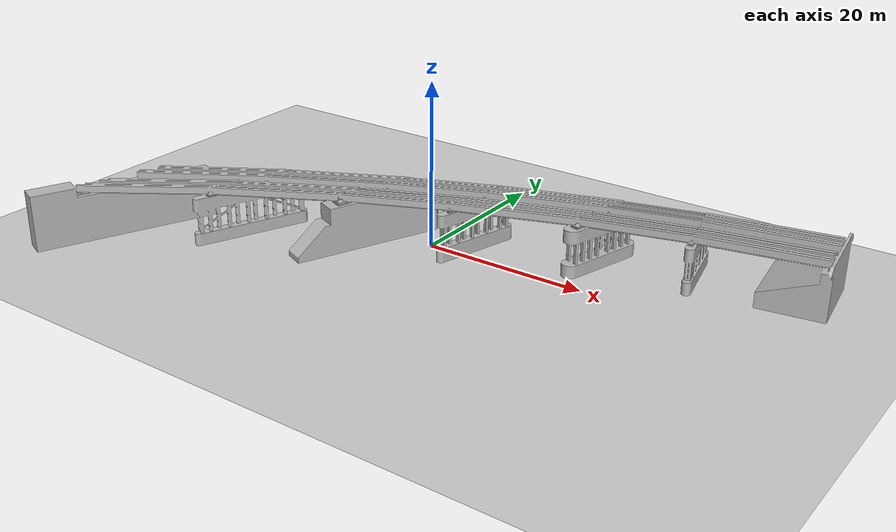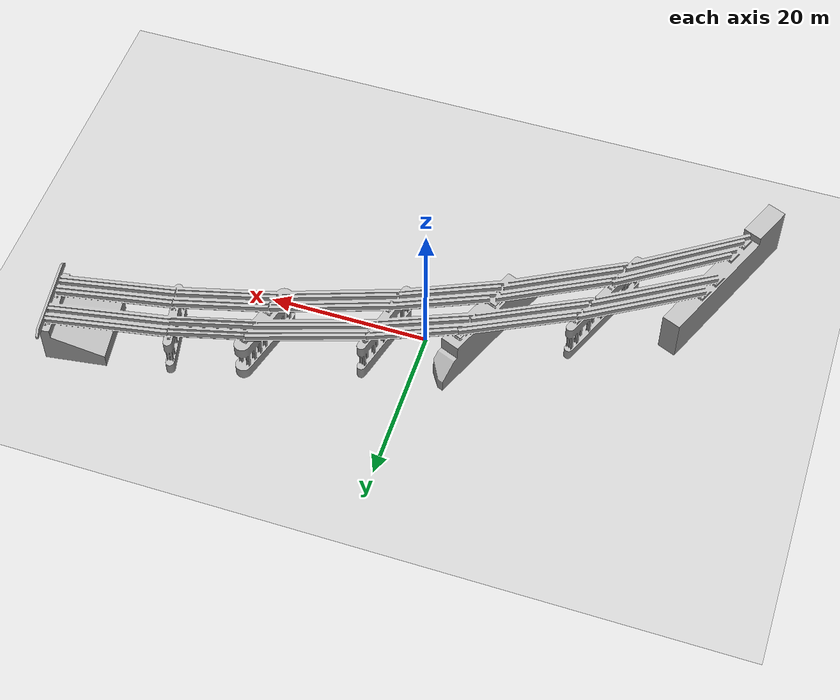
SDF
<?xml version="1.0" ?>
<sdf version="1.4">
  <world name="default">
    <scene>
      <ambient>0.5 0.5 0.5 1</ambient>
      <background>0.5 0.5 0.5 1</background>
      <shadows>false</shadows>
    </scene>
    <physics type="ode">
      <gravity>0 0 0</gravity>
      <ode>
        <solver>
          <type>quick</type>
          <iters>10</iters>
          <sor>1.3</sor>
        </solver>
        <constraints>
          <cfm>0.0</cfm>
          <erp>0.2</erp>
          <contact_max_correcting_vel>10</contact_max_correcting_vel>
          <contact_surface_layer>0.001</contact_surface_layer>
        </constraints>
      </ode>
      <max_step_size>0.01</max_step_size>
      <real_time_update_rate>1000</real_time_update_rate>
    </physics>

    <include>
      <uri>model://ground_plane</uri>
    </include>
    <include>
      <uri>model://sun</uri>
    </include>

    <model name="bridge">
      <pose>-7 -17 8.5  0 0 0</pose>
      <static>true</static>
      <link name="body">
        <visual name="visual">
          <geometry>

            <mesh>
              <uri>file:///home/szeng/inspection_ws/src/inspection_sim/dji_gazebo/models/robotcity.STL</uri>
              <scale>0.0254 0.0254 0.0254</scale>
            </mesh>
          </geometry>
        </visual>

        <collision name="collision">
          <geometry>
            <mesh>
              <uri>file:///home/szeng/inspection_ws/src/inspection_sim/dji_gazebo/models/robotcity.STL</uri>
              <scale>0.0254 0.0254 0.0254</scale>
            </mesh>
          </geometry>
        </collision>

      </link>
    </model>

  </world>
</sdf>
